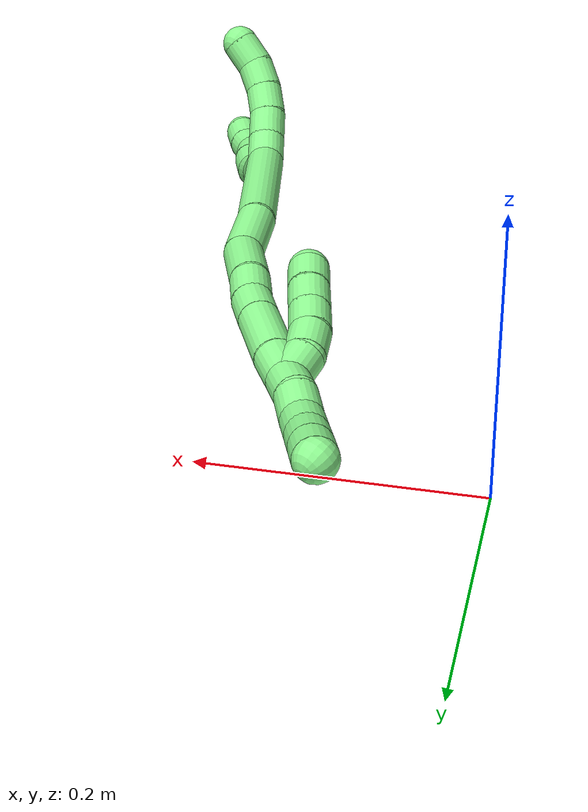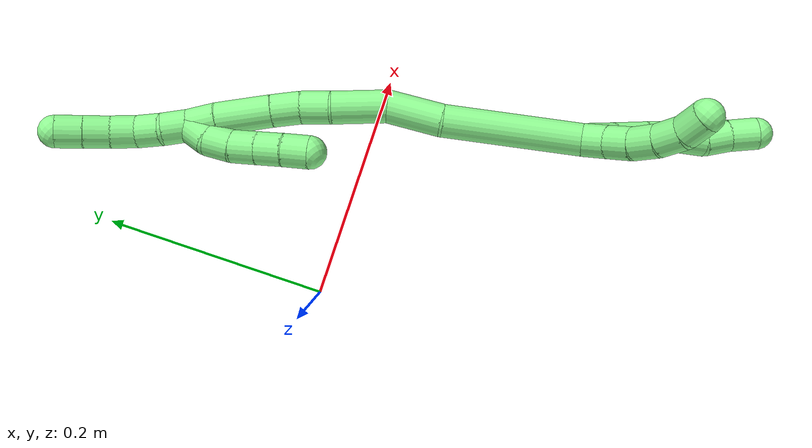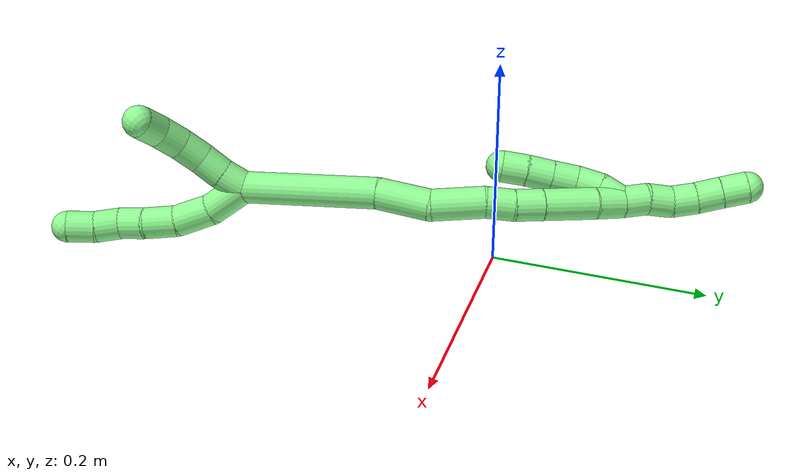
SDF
<sdf version="1.7">
 <world name="default">
  <model name="13">
   <static>0</static>
   <link name="13">
    <collision name="collision-cylinder-e_1_2_8">
     <pose>-0.003781 -0.015305 0.004946 1.25823 -0.230894 -0.168387</pose>
     <geometry><cylinder><radius>0.0125</radius><length>0.033046</length></cylinder></geometry>
     <surface>
      <friction><ode><mu>1.16</mu><mu2>1.16</mu2><slip1>0</slip1><slip2>0</slip2></ode></friction>
      <contact><ode><kp>1e+06</kp><kd>1</kd><max_vel>0</max_vel><min_depth>0.001</min_depth></ode></contact>
     </surface>
    </collision>
    <visual name="visual-cylinder-e_1_2_8">
     <pose>-0.003781 -0.015305 0.004946 1.25823 -0.230894 -0.168387</pose>
     <geometry><cylinder><radius>0.0125</radius><length>0.033046</length></cylinder></geometry>
     <material><ambient>0.564706 0.984314 0.572549 1</ambient></material>
    </visual>
    <collision name="collision-cylinder-e_2_8_9">
     <pose>-0.007668 -0.043795 0.016903 1.08208 -0.007079 -0.004254</pose>
     <geometry><cylinder><radius>0.0125</radius><length>0.029865</length></cylinder></geometry>
     <surface>
      <friction><ode><mu>1.16</mu><mu2>1.16</mu2><slip1>0</slip1><slip2>0</slip2></ode></friction>
      <contact><ode><kp>1e+06</kp><kd>1</kd><max_vel>0</max_vel><min_depth>0.001</min_depth></ode></contact>
     </surface>
    </collision>
    <visual name="visual-cylinder-e_2_8_9">
     <pose>-0.007668 -0.043795 0.016903 1.08208 -0.007079 -0.004254</pose>
     <geometry><cylinder><radius>0.0125</radius><length>0.029865</length></cylinder></geometry>
     <material><ambient>0.564706 0.984314 0.572549 1</ambient></material>
    </visual>
    <collision name="collision-cylinder-e_3_9_10">
     <pose>-0.005354 -0.066745 0.031735 0.895504 0.19102 0.09196</pose>
     <geometry><cylinder><radius>0.0125</radius><length>0.025489</length></cylinder></geometry>
     <surface>
      <friction><ode><mu>1.16</mu><mu2>1.16</mu2><slip1>0</slip1><slip2>0</slip2></ode></friction>
      <contact><ode><kp>1e+06</kp><kd>1</kd><max_vel>0</max_vel><min_depth>0.001</min_depth></ode></contact>
     </surface>
    </collision>
    <visual name="visual-cylinder-e_3_9_10">
     <pose>-0.005354 -0.066745 0.031735 0.895504 0.19102 0.09196</pose>
     <geometry><cylinder><radius>0.0125</radius><length>0.025489</length></cylinder></geometry>
     <material><ambient>0.564706 0.984314 0.572549 1</ambient></material>
    </visual>
    <collision name="collision-cylinder-e_4_10_11">
     <pose>-0.002073 -0.083573 0.046696 0.779947 0.085614 0.035207</pose>
     <geometry><cylinder><radius>0.0125</radius><length>0.020156</length></cylinder></geometry>
     <surface>
      <friction><ode><mu>1.16</mu><mu2>1.16</mu2><slip1>0</slip1><slip2>0</slip2></ode></friction>
      <contact><ode><kp>1e+06</kp><kd>1</kd><max_vel>0</max_vel><min_depth>0.001</min_depth></ode></contact>
     </surface>
    </collision>
    <visual name="visual-cylinder-e_4_10_11">
     <pose>-0.002073 -0.083573 0.046696 0.779947 0.085614 0.035207</pose>
     <geometry><cylinder><radius>0.0125</radius><length>0.020156</length></cylinder></geometry>
     <material><ambient>0.564706 0.984314 0.572549 1</ambient></material>
    </visual>
    <collision name="collision-cylinder-e_5_11_12">
     <pose>0.001692 -0.098848 0.058819 1.02534 0.293472 0.166</pose>
     <geometry><cylinder><radius>0.0125</radius><length>0.020075</length></cylinder></geometry>
     <surface>
      <friction><ode><mu>1.16</mu><mu2>1.16</mu2><slip1>0</slip1><slip2>0</slip2></ode></friction>
      <contact><ode><kp>1e+06</kp><kd>1</kd><max_vel>0</max_vel><min_depth>0.001</min_depth></ode></contact>
     </surface>
    </collision>
    <visual name="visual-cylinder-e_5_11_12">
     <pose>0.001692 -0.098848 0.058819 1.02534 0.293472 0.166</pose>
     <geometry><cylinder><radius>0.0125</radius><length>0.020075</length></cylinder></geometry>
     <material><ambient>0.564706 0.984314 0.572549 1</ambient></material>
    </visual>
    <collision name="collision-cylinder-e_6_12_6">
     <pose>0.008115 -0.114711 0.070382 0.860529 0.335575 0.155159</pose>
     <geometry><cylinder><radius>0.0125</radius><length>0.021369</length></cylinder></geometry>
     <surface>
      <friction><ode><mu>1.16</mu><mu2>1.16</mu2><slip1>0</slip1><slip2>0</slip2></ode></friction>
      <contact><ode><kp>1e+06</kp><kd>1</kd><max_vel>0</max_vel><min_depth>0.001</min_depth></ode></contact>
     </surface>
    </collision>
    <visual name="visual-cylinder-e_6_12_6">
     <pose>0.008115 -0.114711 0.070382 0.860529 0.335575 0.155159</pose>
     <geometry><cylinder><radius>0.0125</radius><length>0.021369</length></cylinder></geometry>
     <material><ambient>0.564706 0.984314 0.572549 1</ambient></material>
    </visual>
    <collision name="collision-cylinder-e_1_2_13">
     <pose>0.005424 -0.002752 0.007938 0.333686 0.57335 0.099211</pose>
     <geometry><cylinder><radius>0.0125</radius><length>0.02</length></cylinder></geometry>
     <surface>
      <friction><ode><mu>1.16</mu><mu2>1.16</mu2><slip1>0</slip1><slip2>0</slip2></ode></friction>
      <contact><ode><kp>1e+06</kp><kd>1</kd><max_vel>0</max_vel><min_depth>0.001</min_depth></ode></contact>
     </surface>
    </collision>
    <visual name="visual-cylinder-e_1_2_13">
     <pose>0.005424 -0.002752 0.007938 0.333686 0.57335 0.099211</pose>
     <geometry><cylinder><radius>0.0125</radius><length>0.02</length></cylinder></geometry>
     <material><ambient>0.564706 0.984314 0.572549 1</ambient></material>
    </visual>
    <collision name="collision-cylinder-e_2_13_14">
     <pose>0.017042 -0.007027 0.023577 0.195355 0.667812 0.067958</pose>
     <geometry><cylinder><radius>0.0125</radius><length>0.02</length></cylinder></geometry>
     <surface>
      <friction><ode><mu>1.16</mu><mu2>1.16</mu2><slip1>0</slip1><slip2>0</slip2></ode></friction>
      <contact><ode><kp>1e+06</kp><kd>1</kd><max_vel>0</max_vel><min_depth>0.001</min_depth></ode></contact>
     </surface>
    </collision>
    <visual name="visual-cylinder-e_2_13_14">
     <pose>0.017042 -0.007027 0.023577 0.195355 0.667812 0.067958</pose>
     <geometry><cylinder><radius>0.0125</radius><length>0.02</length></cylinder></geometry>
     <material><ambient>0.564706 0.984314 0.572549 1</ambient></material>
    </visual>
    <collision name="collision-cylinder-e_3_14_15">
     <pose>0.030611 -0.010592 0.037715 0.307128 0.829626 0.136111</pose>
     <geometry><cylinder><radius>0.0125</radius><length>0.02</length></cylinder></geometry>
     <surface>
      <friction><ode><mu>1.16</mu><mu2>1.16</mu2><slip1>0</slip1><slip2>0</slip2></ode></friction>
      <contact><ode><kp>1e+06</kp><kd>1</kd><max_vel>0</max_vel><min_depth>0.001</min_depth></ode></contact>
     </surface>
    </collision>
    <visual name="visual-cylinder-e_3_14_15">
     <pose>0.030611 -0.010592 0.037715 0.307128 0.829626 0.136111</pose>
     <geometry><cylinder><radius>0.0125</radius><length>0.02</length></cylinder></geometry>
     <material><ambient>0.564706 0.984314 0.572549 1</ambient></material>
    </visual>
    <collision name="collision-cylinder-e_4_15_16">
     <pose>0.046225 -0.015201 0.049207 0.469776 0.967854 0.25025</pose>
     <geometry><cylinder><radius>0.0125</radius><length>0.02</length></cylinder></geometry>
     <surface>
      <friction><ode><mu>1.16</mu><mu2>1.16</mu2><slip1>0</slip1><slip2>0</slip2></ode></friction>
      <contact><ode><kp>1e+06</kp><kd>1</kd><max_vel>0</max_vel><min_depth>0.001</min_depth></ode></contact>
     </surface>
    </collision>
    <visual name="visual-cylinder-e_4_15_16">
     <pose>0.046225 -0.015201 0.049207 0.469776 0.967854 0.25025</pose>
     <geometry><cylinder><radius>0.0125</radius><length>0.02</length></cylinder></geometry>
     <material><ambient>0.564706 0.984314 0.572549 1</ambient></material>
    </visual>
    <collision name="collision-cylinder-e_5_16_5">
     <pose>0.063835 -0.020383 0.056567 0.848846 1.21485 0.608694</pose>
     <geometry><cylinder><radius>0.0125</radius><length>0.02</length></cylinder></geometry>
     <surface>
      <friction><ode><mu>1.16</mu><mu2>1.16</mu2><slip1>0</slip1><slip2>0</slip2></ode></friction>
      <contact><ode><kp>1e+06</kp><kd>1</kd><max_vel>0</max_vel><min_depth>0.001</min_depth></ode></contact>
     </surface>
    </collision>
    <visual name="visual-cylinder-e_5_16_5">
     <pose>0.063835 -0.020383 0.056567 0.848846 1.21485 0.608694</pose>
     <geometry><cylinder><radius>0.0125</radius><length>0.02</length></cylinder></geometry>
     <material><ambient>0.564706 0.984314 0.572549 1</ambient></material>
    </visual>
    <collision name="collision-cylinder-e_1_2_17">
     <pose>-0.006897 0.035658 -0.038739 -2.39759 -0.130251 0.331243</pose>
     <geometry><cylinder><radius>0.0125</radius><length>0.106202</length></cylinder></geometry>
     <surface>
      <friction><ode><mu>1.16</mu><mu2>1.16</mu2><slip1>0</slip1><slip2>0</slip2></ode></friction>
      <contact><ode><kp>1e+06</kp><kd>1</kd><max_vel>0</max_vel><min_depth>0.001</min_depth></ode></contact>
     </surface>
    </collision>
    <visual name="visual-cylinder-e_1_2_17">
     <pose>-0.006897 0.035658 -0.038739 -2.39759 -0.130251 0.331243</pose>
     <geometry><cylinder><radius>0.0125</radius><length>0.106202</length></cylinder></geometry>
     <material><ambient>0.564706 0.984314 0.572549 1</ambient></material>
    </visual>
    <collision name="collision-cylinder-e_2_17_18">
     <pose>-0.016847 0.082451 -0.095184 -2.58019 -0.144935 0.493329</pose>
     <geometry><cylinder><radius>0.0125</radius><length>0.042277</length></cylinder></geometry>
     <surface>
      <friction><ode><mu>1.16</mu><mu2>1.16</mu2><slip1>0</slip1><slip2>0</slip2></ode></friction>
      <contact><ode><kp>1e+06</kp><kd>1</kd><max_vel>0</max_vel><min_depth>0.001</min_depth></ode></contact>
     </surface>
    </collision>
    <visual name="visual-cylinder-e_2_17_18">
     <pose>-0.016847 0.082451 -0.095184 -2.58019 -0.144935 0.493329</pose>
     <geometry><cylinder><radius>0.0125</radius><length>0.042277</length></cylinder></geometry>
     <material><ambient>0.564706 0.984314 0.572549 1</ambient></material>
    </visual>
    <collision name="collision-cylinder-e_3_18_19">
     <pose>-0.024362 0.109696 -0.125967 -2.25262 -0.211825 0.439224</pose>
     <geometry><cylinder><radius>0.0125</radius><length>0.042446</length></cylinder></geometry>
     <surface>
      <friction><ode><mu>1.16</mu><mu2>1.16</mu2><slip1>0</slip1><slip2>0</slip2></ode></friction>
      <contact><ode><kp>1e+06</kp><kd>1</kd><max_vel>0</max_vel><min_depth>0.001</min_depth></ode></contact>
     </surface>
    </collision>
    <visual name="visual-cylinder-e_3_18_19">
     <pose>-0.024362 0.109696 -0.125967 -2.25262 -0.211825 0.439224</pose>
     <geometry><cylinder><radius>0.0125</radius><length>0.042446</length></cylinder></geometry>
     <material><ambient>0.564706 0.984314 0.572549 1</ambient></material>
    </visual>
    <collision name="collision-cylinder-e_4_19_20">
     <pose>-0.032283 0.133033 -0.146834 -2.39379 -0.314723 0.768605</pose>
     <geometry><cylinder><radius>0.0125</radius><length>0.022351</length></cylinder></geometry>
     <surface>
      <friction><ode><mu>1.16</mu><mu2>1.16</mu2><slip1>0</slip1><slip2>0</slip2></ode></friction>
      <contact><ode><kp>1e+06</kp><kd>1</kd><max_vel>0</max_vel><min_depth>0.001</min_depth></ode></contact>
     </surface>
    </collision>
    <visual name="visual-cylinder-e_4_19_20">
     <pose>-0.032283 0.133033 -0.146834 -2.39379 -0.314723 0.768605</pose>
     <geometry><cylinder><radius>0.0125</radius><length>0.022351</length></cylinder></geometry>
     <material><ambient>0.564706 0.984314 0.572549 1</ambient></material>
    </visual>
    <collision name="collision-cylinder-e_5_20_21">
     <pose>-0.039371 0.148524 -0.161097 -2.2351 -0.332791 0.664103</pose>
     <geometry><cylinder><radius>0.0125</radius><length>0.022214</length></cylinder></geometry>
     <surface>
      <friction><ode><mu>1.16</mu><mu2>1.16</mu2><slip1>0</slip1><slip2>0</slip2></ode></friction>
      <contact><ode><kp>1e+06</kp><kd>1</kd><max_vel>0</max_vel><min_depth>0.001</min_depth></ode></contact>
     </surface>
    </collision>
    <visual name="visual-cylinder-e_5_20_21">
     <pose>-0.039371 0.148524 -0.161097 -2.2351 -0.332791 0.664103</pose>
     <geometry><cylinder><radius>0.0125</radius><length>0.022214</length></cylinder></geometry>
     <material><ambient>0.564706 0.984314 0.572549 1</ambient></material>
    </visual>
    <collision name="collision-cylinder-e_6_21_22">
     <pose>-0.050418 0.172508 -0.17956 -2.22246 -0.358987 0.702816</pose>
     <geometry><cylinder><radius>0.0125</radius><length>0.042233</length></cylinder></geometry>
     <surface>
      <friction><ode><mu>1.16</mu><mu2>1.16</mu2><slip1>0</slip1><slip2>0</slip2></ode></friction>
      <contact><ode><kp>1e+06</kp><kd>1</kd><max_vel>0</max_vel><min_depth>0.001</min_depth></ode></contact>
     </surface>
    </collision>
    <visual name="visual-cylinder-e_6_21_22">
     <pose>-0.050418 0.172508 -0.17956 -2.22246 -0.358987 0.702816</pose>
     <geometry><cylinder><radius>0.0125</radius><length>0.042233</length></cylinder></geometry>
     <material><ambient>0.564706 0.984314 0.572549 1</ambient></material>
    </visual>
    <collision name="collision-cylinder-e_7_22_1">
     <pose>-0.062509 0.196583 -0.197244 -2.1689 -0.432837 0.788186</pose>
     <geometry><cylinder><radius>0.0125</radius><length>0.022276</length></cylinder></geometry>
     <surface>
      <friction><ode><mu>1.16</mu><mu2>1.16</mu2><slip1>0</slip1><slip2>0</slip2></ode></friction>
      <contact><ode><kp>1e+06</kp><kd>1</kd><max_vel>0</max_vel><min_depth>0.001</min_depth></ode></contact>
     </surface>
    </collision>
    <visual name="visual-cylinder-e_7_22_1">
     <pose>-0.062509 0.196583 -0.197244 -2.1689 -0.432837 0.788186</pose>
     <geometry><cylinder><radius>0.0125</radius><length>0.022276</length></cylinder></geometry>
     <material><ambient>0.564706 0.984314 0.572549 1</ambient></material>
    </visual>
    <collision name="collision-cylinder-e_1_1_23">
     <pose>-0.066389 0.203174 -0.193126 0.17801 0.079241 0.007075</pose>
     <geometry><cylinder><radius>0.0125</radius><length>0.02</length></cylinder></geometry>
     <surface>
      <friction><ode><mu>1.16</mu><mu2>1.16</mu2><slip1>0</slip1><slip2>0</slip2></ode></friction>
      <contact><ode><kp>1e+06</kp><kd>1</kd><max_vel>0</max_vel><min_depth>0.001</min_depth></ode></contact>
     </surface>
    </collision>
    <visual name="visual-cylinder-e_1_1_23">
     <pose>-0.066389 0.203174 -0.193126 0.17801 0.079241 0.007075</pose>
     <geometry><cylinder><radius>0.0125</radius><length>0.02</length></cylinder></geometry>
     <material><ambient>0.564706 0.984314 0.572549 1</ambient></material>
    </visual>
    <collision name="collision-cylinder-e_2_23_24">
     <pose>-0.063413 0.196763 -0.174733 0.496135 0.220224 0.055991</pose>
     <geometry><cylinder><radius>0.0125</radius><length>0.02</length></cylinder></geometry>
     <surface>
      <friction><ode><mu>1.16</mu><mu2>1.16</mu2><slip1>0</slip1><slip2>0</slip2></ode></friction>
      <contact><ode><kp>1e+06</kp><kd>1</kd><max_vel>0</max_vel><min_depth>0.001</min_depth></ode></contact>
     </surface>
    </collision>
    <visual name="visual-cylinder-e_2_23_24">
     <pose>-0.063413 0.196763 -0.174733 0.496135 0.220224 0.055991</pose>
     <geometry><cylinder><radius>0.0125</radius><length>0.02</length></cylinder></geometry>
     <material><ambient>0.564706 0.984314 0.572549 1</ambient></material>
    </visual>
    <collision name="collision-cylinder-e_3_24_25">
     <pose>-0.057988 0.186413 -0.158605 0.647327 0.330029 0.111612</pose>
     <geometry><cylinder><radius>0.0125</radius><length>0.02</length></cylinder></geometry>
     <surface>
      <friction><ode><mu>1.16</mu><mu2>1.16</mu2><slip1>0</slip1><slip2>0</slip2></ode></friction>
      <contact><ode><kp>1e+06</kp><kd>1</kd><max_vel>0</max_vel><min_depth>0.001</min_depth></ode></contact>
     </surface>
    </collision>
    <visual name="visual-cylinder-e_3_24_25">
     <pose>-0.057988 0.186413 -0.158605 0.647327 0.330029 0.111612</pose>
     <geometry><cylinder><radius>0.0125</radius><length>0.02</length></cylinder></geometry>
     <material><ambient>0.564706 0.984314 0.572549 1</ambient></material>
    </visual>
    <collision name="collision-cylinder-e_4_25_26">
     <pose>-0.051289 0.175151 -0.143498 0.633798 0.353161 0.116905</pose>
     <geometry><cylinder><radius>0.0125</radius><length>0.02</length></cylinder></geometry>
     <surface>
      <friction><ode><mu>1.16</mu><mu2>1.16</mu2><slip1>0</slip1><slip2>0</slip2></ode></friction>
      <contact><ode><kp>1e+06</kp><kd>1</kd><max_vel>0</max_vel><min_depth>0.001</min_depth></ode></contact>
     </surface>
    </collision>
    <visual name="visual-cylinder-e_4_25_26">
     <pose>-0.051289 0.175151 -0.143498 0.633798 0.353161 0.116905</pose>
     <geometry><cylinder><radius>0.0125</radius><length>0.02</length></cylinder></geometry>
     <material><ambient>0.564706 0.984314 0.572549 1</ambient></material>
    </visual>
    <collision name="collision-cylinder-e_5_26_4">
     <pose>-0.045057 0.163624 -0.128409 0.670474 0.280978 0.098458</pose>
     <geometry><cylinder><radius>0.0125</radius><length>0.02</length></cylinder></geometry>
     <surface>
      <friction><ode><mu>1.16</mu><mu2>1.16</mu2><slip1>0</slip1><slip2>0</slip2></ode></friction>
      <contact><ode><kp>1e+06</kp><kd>1</kd><max_vel>0</max_vel><min_depth>0.001</min_depth></ode></contact>
     </surface>
    </collision>
    <visual name="visual-cylinder-e_5_26_4">
     <pose>-0.045057 0.163624 -0.128409 0.670474 0.280978 0.098458</pose>
     <geometry><cylinder><radius>0.0125</radius><length>0.02</length></cylinder></geometry>
     <material><ambient>0.564706 0.984314 0.572549 1</ambient></material>
    </visual>
    <collision name="collision-cylinder-e_1_1_27">
     <pose>-0.069897 0.213001 -0.208193 -2.14851 -0.275035 0.500146</pose>
     <geometry><cylinder><radius>0.0125</radius><length>0.02</length></cylinder></geometry>
     <surface>
      <friction><ode><mu>1.16</mu><mu2>1.16</mu2><slip1>0</slip1><slip2>0</slip2></ode></friction>
      <contact><ode><kp>1e+06</kp><kd>1</kd><max_vel>0</max_vel><min_depth>0.001</min_depth></ode></contact>
     </surface>
    </collision>
    <visual name="visual-cylinder-e_1_1_27">
     <pose>-0.069897 0.213001 -0.208193 -2.14851 -0.275035 0.500146</pose>
     <geometry><cylinder><radius>0.0125</radius><length>0.02</length></cylinder></geometry>
     <material><ambient>0.564706 0.984314 0.572549 1</ambient></material>
    </visual>
    <collision name="collision-cylinder-e_2_27_28">
     <pose>-0.076665 0.227543 -0.219899 -2.35388 -0.417234 0.9423</pose>
     <geometry><cylinder><radius>0.0125</radius><length>0.02</length></cylinder></geometry>
     <surface>
      <friction><ode><mu>1.16</mu><mu2>1.16</mu2><slip1>0</slip1><slip2>0</slip2></ode></friction>
      <contact><ode><kp>1e+06</kp><kd>1</kd><max_vel>0</max_vel><min_depth>0.001</min_depth></ode></contact>
     </surface>
    </collision>
    <visual name="visual-cylinder-e_2_27_28">
     <pose>-0.076665 0.227543 -0.219899 -2.35388 -0.417234 0.9423</pose>
     <geometry><cylinder><radius>0.0125</radius><length>0.02</length></cylinder></geometry>
     <material><ambient>0.564706 0.984314 0.572549 1</ambient></material>
    </visual>
    <collision name="collision-cylinder-e_3_28_29">
     <pose>-0.082035 0.242104 -0.232089 -2.18844 -0.132184 0.25502</pose>
     <geometry><cylinder><radius>0.0125</radius><length>0.02</length></cylinder></geometry>
     <surface>
      <friction><ode><mu>1.16</mu><mu2>1.16</mu2><slip1>0</slip1><slip2>0</slip2></ode></friction>
      <contact><ode><kp>1e+06</kp><kd>1</kd><max_vel>0</max_vel><min_depth>0.001</min_depth></ode></contact>
     </surface>
    </collision>
    <visual name="visual-cylinder-e_3_28_29">
     <pose>-0.082035 0.242104 -0.232089 -2.18844 -0.132184 0.25502</pose>
     <geometry><cylinder><radius>0.0125</radius><length>0.02</length></cylinder></geometry>
     <material><ambient>0.564706 0.984314 0.572549 1</ambient></material>
    </visual>
    <collision name="collision-cylinder-e_4_29_30">
     <pose>-0.083656 0.258551 -0.243299 -2.14982 -0.030271 0.055947</pose>
     <geometry><cylinder><radius>0.0125</radius><length>0.02</length></cylinder></geometry>
     <surface>
      <friction><ode><mu>1.16</mu><mu2>1.16</mu2><slip1>0</slip1><slip2>0</slip2></ode></friction>
      <contact><ode><kp>1e+06</kp><kd>1</kd><max_vel>0</max_vel><min_depth>0.001</min_depth></ode></contact>
     </surface>
    </collision>
    <visual name="visual-cylinder-e_4_29_30">
     <pose>-0.083656 0.258551 -0.243299 -2.14982 -0.030271 0.055947</pose>
     <geometry><cylinder><radius>0.0125</radius><length>0.02</length></cylinder></geometry>
     <material><ambient>0.564706 0.984314 0.572549 1</ambient></material>
    </visual>
    <collision name="collision-cylinder-e_5_30_3">
     <pose>-0.084394 0.275212 -0.254337 -2.16206 -0.043529 0.081621</pose>
     <geometry><cylinder><radius>0.0125</radius><length>0.02</length></cylinder></geometry>
     <surface>
      <friction><ode><mu>1.16</mu><mu2>1.16</mu2><slip1>0</slip1><slip2>0</slip2></ode></friction>
      <contact><ode><kp>1e+06</kp><kd>1</kd><max_vel>0</max_vel><min_depth>0.001</min_depth></ode></contact>
     </surface>
    </collision>
    <visual name="visual-cylinder-e_5_30_3">
     <pose>-0.084394 0.275212 -0.254337 -2.16206 -0.043529 0.081621</pose>
     <geometry><cylinder><radius>0.0125</radius><length>0.02</length></cylinder></geometry>
     <material><ambient>0.564706 0.984314 0.572549 1</ambient></material>
    </visual>
    <collision name="collision-sphere-3">
     <pose>-0.084829 0.283506 -0.259906 0 -0 0</pose>
     <geometry><sphere><radius>0.0125</radius></sphere></geometry>
     <surface>
      <friction><ode><mu>1.16</mu><mu2>1.16</mu2><slip1>0</slip1><slip2>0</slip2></ode></friction>
      <contact><ode><kp>1e+06</kp><kd>1</kd><max_vel>0</max_vel><min_depth>0.001</min_depth></ode></contact>
     </surface>
    </collision>
    <visual name="visual-sphere-3">
     <pose>-0.084829 0.283506 -0.259906 0 -0 0</pose>
     <geometry><sphere><radius>0.0125</radius></sphere></geometry>
     <material><ambient>0.564706 0.984314 0.572549 1</ambient></material>
    </visual>
    <collision name="collision-sphere-30">
     <pose>-0.083959 0.266917 -0.248768 0 -0 0</pose>
     <geometry><sphere><radius>0.0125</radius></sphere></geometry>
     <surface>
      <friction><ode><mu>1.16</mu><mu2>1.16</mu2><slip1>0</slip1><slip2>0</slip2></ode></friction>
      <contact><ode><kp>1e+06</kp><kd>1</kd><max_vel>0</max_vel><min_depth>0.001</min_depth></ode></contact>
     </surface>
    </collision>
    <visual name="visual-sphere-30">
     <pose>-0.083959 0.266917 -0.248768 0 -0 0</pose>
     <geometry><sphere><radius>0.0125</radius></sphere></geometry>
     <material><ambient>0.564706 0.984314 0.572549 1</ambient></material>
    </visual>
    <collision name="collision-sphere-29">
     <pose>-0.083353 0.250185 -0.237829 0 -0 0</pose>
     <geometry><sphere><radius>0.0125</radius></sphere></geometry>
     <surface>
      <friction><ode><mu>1.16</mu><mu2>1.16</mu2><slip1>0</slip1><slip2>0</slip2></ode></friction>
      <contact><ode><kp>1e+06</kp><kd>1</kd><max_vel>0</max_vel><min_depth>0.001</min_depth></ode></contact>
     </surface>
    </collision>
    <visual name="visual-sphere-29">
     <pose>-0.083353 0.250185 -0.237829 0 -0 0</pose>
     <geometry><sphere><radius>0.0125</radius></sphere></geometry>
     <material><ambient>0.564706 0.984314 0.572549 1</ambient></material>
    </visual>
    <collision name="collision-sphere-28">
     <pose>-0.080717 0.234022 -0.226348 0 -0 0</pose>
     <geometry><sphere><radius>0.0125</radius></sphere></geometry>
     <surface>
      <friction><ode><mu>1.16</mu><mu2>1.16</mu2><slip1>0</slip1><slip2>0</slip2></ode></friction>
      <contact><ode><kp>1e+06</kp><kd>1</kd><max_vel>0</max_vel><min_depth>0.001</min_depth></ode></contact>
     </surface>
    </collision>
    <visual name="visual-sphere-28">
     <pose>-0.080717 0.234022 -0.226348 0 -0 0</pose>
     <geometry><sphere><radius>0.0125</radius></sphere></geometry>
     <material><ambient>0.564706 0.984314 0.572549 1</ambient></material>
    </visual>
    <collision name="collision-sphere-27">
     <pose>-0.072613 0.221063 -0.213449 0 -0 0</pose>
     <geometry><sphere><radius>0.0125</radius></sphere></geometry>
     <surface>
      <friction><ode><mu>1.16</mu><mu2>1.16</mu2><slip1>0</slip1><slip2>0</slip2></ode></friction>
      <contact><ode><kp>1e+06</kp><kd>1</kd><max_vel>0</max_vel><min_depth>0.001</min_depth></ode></contact>
     </surface>
    </collision>
    <visual name="visual-sphere-27">
     <pose>-0.072613 0.221063 -0.213449 0 -0 0</pose>
     <geometry><sphere><radius>0.0125</radius></sphere></geometry>
     <material><ambient>0.564706 0.984314 0.572549 1</ambient></material>
    </visual>
    <collision name="collision-sphere-4">
     <pose>-0.042284 0.157655 -0.120881 0 -0 0</pose>
     <geometry><sphere><radius>0.0125</radius></sphere></geometry>
     <surface>
      <friction><ode><mu>1.16</mu><mu2>1.16</mu2><slip1>0</slip1><slip2>0</slip2></ode></friction>
      <contact><ode><kp>1e+06</kp><kd>1</kd><max_vel>0</max_vel><min_depth>0.001</min_depth></ode></contact>
     </surface>
    </collision>
    <visual name="visual-sphere-4">
     <pose>-0.042284 0.157655 -0.120881 0 -0 0</pose>
     <geometry><sphere><radius>0.0125</radius></sphere></geometry>
     <material><ambient>0.564706 0.984314 0.572549 1</ambient></material>
    </visual>
    <collision name="collision-sphere-26">
     <pose>-0.04783 0.169594 -0.135937 0 -0 0</pose>
     <geometry><sphere><radius>0.0125</radius></sphere></geometry>
     <surface>
      <friction><ode><mu>1.16</mu><mu2>1.16</mu2><slip1>0</slip1><slip2>0</slip2></ode></friction>
      <contact><ode><kp>1e+06</kp><kd>1</kd><max_vel>0</max_vel><min_depth>0.001</min_depth></ode></contact>
     </surface>
    </collision>
    <visual name="visual-sphere-26">
     <pose>-0.04783 0.169594 -0.135937 0 -0 0</pose>
     <geometry><sphere><radius>0.0125</radius></sphere></geometry>
     <material><ambient>0.564706 0.984314 0.572549 1</ambient></material>
    </visual>
    <collision name="collision-sphere-25">
     <pose>-0.054747 0.180708 -0.151058 0 -0 0</pose>
     <geometry><sphere><radius>0.0125</radius></sphere></geometry>
     <surface>
      <friction><ode><mu>1.16</mu><mu2>1.16</mu2><slip1>0</slip1><slip2>0</slip2></ode></friction>
      <contact><ode><kp>1e+06</kp><kd>1</kd><max_vel>0</max_vel><min_depth>0.001</min_depth></ode></contact>
     </surface>
    </collision>
    <visual name="visual-sphere-25">
     <pose>-0.054747 0.180708 -0.151058 0 -0 0</pose>
     <geometry><sphere><radius>0.0125</radius></sphere></geometry>
     <material><ambient>0.564706 0.984314 0.572549 1</ambient></material>
    </visual>
    <collision name="collision-sphere-24">
     <pose>-0.061229 0.192118 -0.166151 0 -0 0</pose>
     <geometry><sphere><radius>0.0125</radius></sphere></geometry>
     <surface>
      <friction><ode><mu>1.16</mu><mu2>1.16</mu2><slip1>0</slip1><slip2>0</slip2></ode></friction>
      <contact><ode><kp>1e+06</kp><kd>1</kd><max_vel>0</max_vel><min_depth>0.001</min_depth></ode></contact>
     </surface>
    </collision>
    <visual name="visual-sphere-24">
     <pose>-0.061229 0.192118 -0.166151 0 -0 0</pose>
     <geometry><sphere><radius>0.0125</radius></sphere></geometry>
     <material><ambient>0.564706 0.984314 0.572549 1</ambient></material>
    </visual>
    <collision name="collision-sphere-23">
     <pose>-0.065598 0.201408 -0.183315 0 -0 0</pose>
     <geometry><sphere><radius>0.0125</radius></sphere></geometry>
     <surface>
      <friction><ode><mu>1.16</mu><mu2>1.16</mu2><slip1>0</slip1><slip2>0</slip2></ode></friction>
      <contact><ode><kp>1e+06</kp><kd>1</kd><max_vel>0</max_vel><min_depth>0.001</min_depth></ode></contact>
     </surface>
    </collision>
    <visual name="visual-sphere-23">
     <pose>-0.065598 0.201408 -0.183315 0 -0 0</pose>
     <geometry><sphere><radius>0.0125</radius></sphere></geometry>
     <material><ambient>0.564706 0.984314 0.572549 1</ambient></material>
    </visual>
    <collision name="collision-sphere-1">
     <pose>-0.067181 0.204939 -0.202937 0 -0 0</pose>
     <geometry><sphere><radius>0.0125</radius></sphere></geometry>
     <surface>
      <friction><ode><mu>1.16</mu><mu2>1.16</mu2><slip1>0</slip1><slip2>0</slip2></ode></friction>
      <contact><ode><kp>1e+06</kp><kd>1</kd><max_vel>0</max_vel><min_depth>0.001</min_depth></ode></contact>
     </surface>
    </collision>
    <visual name="visual-sphere-1">
     <pose>-0.067181 0.204939 -0.202937 0 -0 0</pose>
     <geometry><sphere><radius>0.0125</radius></sphere></geometry>
     <material><ambient>0.564706 0.984314 0.572549 1</ambient></material>
    </visual>
    <collision name="collision-sphere-22">
     <pose>-0.057837 0.188227 -0.191551 0 -0 0</pose>
     <geometry><sphere><radius>0.0125</radius></sphere></geometry>
     <surface>
      <friction><ode><mu>1.16</mu><mu2>1.16</mu2><slip1>0</slip1><slip2>0</slip2></ode></friction>
      <contact><ode><kp>1e+06</kp><kd>1</kd><max_vel>0</max_vel><min_depth>0.001</min_depth></ode></contact>
     </surface>
    </collision>
    <visual name="visual-sphere-22">
     <pose>-0.057837 0.188227 -0.191551 0 -0 0</pose>
     <geometry><sphere><radius>0.0125</radius></sphere></geometry>
     <material><ambient>0.564706 0.984314 0.572549 1</ambient></material>
    </visual>
    <collision name="collision-sphere-21">
     <pose>-0.043 0.156789 -0.167569 0 -0 0</pose>
     <geometry><sphere><radius>0.0125</radius></sphere></geometry>
     <surface>
      <friction><ode><mu>1.16</mu><mu2>1.16</mu2><slip1>0</slip1><slip2>0</slip2></ode></friction>
      <contact><ode><kp>1e+06</kp><kd>1</kd><max_vel>0</max_vel><min_depth>0.001</min_depth></ode></contact>
     </surface>
    </collision>
    <visual name="visual-sphere-21">
     <pose>-0.043 0.156789 -0.167569 0 -0 0</pose>
     <geometry><sphere><radius>0.0125</radius></sphere></geometry>
     <material><ambient>0.564706 0.984314 0.572549 1</ambient></material>
    </visual>
    <collision name="collision-sphere-12">
     <pose>0.004596 -0.107062 0.063804 0 -0 0</pose>
     <geometry><sphere><radius>0.0125</radius></sphere></geometry>
     <surface>
      <friction><ode><mu>1.16</mu><mu2>1.16</mu2><slip1>0</slip1><slip2>0</slip2></ode></friction>
      <contact><ode><kp>1e+06</kp><kd>1</kd><max_vel>0</max_vel><min_depth>0.001</min_depth></ode></contact>
     </surface>
    </collision>
    <visual name="visual-sphere-12">
     <pose>0.004596 -0.107062 0.063804 0 -0 0</pose>
     <geometry><sphere><radius>0.0125</radius></sphere></geometry>
     <material><ambient>0.564706 0.984314 0.572549 1</ambient></material>
    </visual>
    <collision name="collision-sphere-11">
     <pose>-0.001211 -0.090634 0.053835 0 -0 0</pose>
     <geometry><sphere><radius>0.0125</radius></sphere></geometry>
     <surface>
      <friction><ode><mu>1.16</mu><mu2>1.16</mu2><slip1>0</slip1><slip2>0</slip2></ode></friction>
      <contact><ode><kp>1e+06</kp><kd>1</kd><max_vel>0</max_vel><min_depth>0.001</min_depth></ode></contact>
     </surface>
    </collision>
    <visual name="visual-sphere-11">
     <pose>-0.001211 -0.090634 0.053835 0 -0 0</pose>
     <geometry><sphere><radius>0.0125</radius></sphere></geometry>
     <material><ambient>0.564706 0.984314 0.572549 1</ambient></material>
    </visual>
    <collision name="collision-sphere-10">
     <pose>-0.002935 -0.076512 0.039557 0 -0 0</pose>
     <geometry><sphere><radius>0.0125</radius></sphere></geometry>
     <surface>
      <friction><ode><mu>1.16</mu><mu2>1.16</mu2><slip1>0</slip1><slip2>0</slip2></ode></friction>
      <contact><ode><kp>1e+06</kp><kd>1</kd><max_vel>0</max_vel><min_depth>0.001</min_depth></ode></contact>
     </surface>
    </collision>
    <visual name="visual-sphere-10">
     <pose>-0.002935 -0.076512 0.039557 0 -0 0</pose>
     <geometry><sphere><radius>0.0125</radius></sphere></geometry>
     <material><ambient>0.564706 0.984314 0.572549 1</ambient></material>
    </visual>
    <collision name="collision-sphere-9">
     <pose>-0.007774 -0.056979 0.023913 0 -0 0</pose>
     <geometry><sphere><radius>0.0125</radius></sphere></geometry>
     <surface>
      <friction><ode><mu>1.16</mu><mu2>1.16</mu2><slip1>0</slip1><slip2>0</slip2></ode></friction>
      <contact><ode><kp>1e+06</kp><kd>1</kd><max_vel>0</max_vel><min_depth>0.001</min_depth></ode></contact>
     </surface>
    </collision>
    <visual name="visual-sphere-9">
     <pose>-0.007774 -0.056979 0.023913 0 -0 0</pose>
     <geometry><sphere><radius>0.0125</radius></sphere></geometry>
     <material><ambient>0.564706 0.984314 0.572549 1</ambient></material>
    </visual>
    <collision name="collision-sphere-2">
     <geometry><sphere><radius>0.0125</radius></sphere></geometry>
     <surface>
      <friction><ode><mu>1.16</mu><mu2>1.16</mu2><slip1>0</slip1><slip2>0</slip2></ode></friction>
      <contact><ode><kp>1e+06</kp><kd>1</kd><max_vel>0</max_vel><min_depth>0.001</min_depth></ode></contact>
     </surface>
    </collision>
    <visual name="visual-sphere-2">
     <geometry><sphere><radius>0.0125</radius></sphere></geometry>
     <material><ambient>0.564706 0.984314 0.572549 1</ambient></material>
    </visual>
    <collision name="collision-sphere-19">
     <pose>-0.028824 0.125806 -0.139043 0 -0 0</pose>
     <geometry><sphere><radius>0.0125</radius></sphere></geometry>
     <surface>
      <friction><ode><mu>1.16</mu><mu2>1.16</mu2><slip1>0</slip1><slip2>0</slip2></ode></friction>
      <contact><ode><kp>1e+06</kp><kd>1</kd><max_vel>0</max_vel><min_depth>0.001</min_depth></ode></contact>
     </surface>
    </collision>
    <visual name="visual-sphere-19">
     <pose>-0.028824 0.125806 -0.139043 0 -0 0</pose>
     <geometry><sphere><radius>0.0125</radius></sphere></geometry>
     <material><ambient>0.564706 0.984314 0.572549 1</ambient></material>
    </visual>
    <collision name="collision-sphere-8">
     <pose>-0.007563 -0.030611 0.009892 0 -0 0</pose>
     <geometry><sphere><radius>0.0125</radius></sphere></geometry>
     <surface>
      <friction><ode><mu>1.16</mu><mu2>1.16</mu2><slip1>0</slip1><slip2>0</slip2></ode></friction>
      <contact><ode><kp>1e+06</kp><kd>1</kd><max_vel>0</max_vel><min_depth>0.001</min_depth></ode></contact>
     </surface>
    </collision>
    <visual name="visual-sphere-8">
     <pose>-0.007563 -0.030611 0.009892 0 -0 0</pose>
     <geometry><sphere><radius>0.0125</radius></sphere></geometry>
     <material><ambient>0.564706 0.984314 0.572549 1</ambient></material>
    </visual>
    <collision name="collision-sphere-6">
     <pose>0.011633 -0.12236 0.07696 0 -0 0</pose>
     <geometry><sphere><radius>0.0125</radius></sphere></geometry>
     <surface>
      <friction><ode><mu>1.16</mu><mu2>1.16</mu2><slip1>0</slip1><slip2>0</slip2></ode></friction>
      <contact><ode><kp>1e+06</kp><kd>1</kd><max_vel>0</max_vel><min_depth>0.001</min_depth></ode></contact>
     </surface>
    </collision>
    <visual name="visual-sphere-6">
     <pose>0.011633 -0.12236 0.07696 0 -0 0</pose>
     <geometry><sphere><radius>0.0125</radius></sphere></geometry>
     <material><ambient>0.564706 0.984314 0.572549 1</ambient></material>
    </visual>
    <collision name="collision-sphere-13">
     <pose>0.010849 -0.005503 0.015875 0 -0 0</pose>
     <geometry><sphere><radius>0.0125</radius></sphere></geometry>
     <surface>
      <friction><ode><mu>1.16</mu><mu2>1.16</mu2><slip1>0</slip1><slip2>0</slip2></ode></friction>
      <contact><ode><kp>1e+06</kp><kd>1</kd><max_vel>0</max_vel><min_depth>0.001</min_depth></ode></contact>
     </surface>
    </collision>
    <visual name="visual-sphere-13">
     <pose>0.010849 -0.005503 0.015875 0 -0 0</pose>
     <geometry><sphere><radius>0.0125</radius></sphere></geometry>
     <material><ambient>0.564706 0.984314 0.572549 1</ambient></material>
    </visual>
    <collision name="collision-sphere-14">
     <pose>0.023234 -0.008551 0.03128 0 -0 0</pose>
     <geometry><sphere><radius>0.0125</radius></sphere></geometry>
     <surface>
      <friction><ode><mu>1.16</mu><mu2>1.16</mu2><slip1>0</slip1><slip2>0</slip2></ode></friction>
      <contact><ode><kp>1e+06</kp><kd>1</kd><max_vel>0</max_vel><min_depth>0.001</min_depth></ode></contact>
     </surface>
    </collision>
    <visual name="visual-sphere-14">
     <pose>0.023234 -0.008551 0.03128 0 -0 0</pose>
     <geometry><sphere><radius>0.0125</radius></sphere></geometry>
     <material><ambient>0.564706 0.984314 0.572549 1</ambient></material>
    </visual>
    <collision name="collision-sphere-15">
     <pose>0.037988 -0.012634 0.044151 0 -0 0</pose>
     <geometry><sphere><radius>0.0125</radius></sphere></geometry>
     <surface>
      <friction><ode><mu>1.16</mu><mu2>1.16</mu2><slip1>0</slip1><slip2>0</slip2></ode></friction>
      <contact><ode><kp>1e+06</kp><kd>1</kd><max_vel>0</max_vel><min_depth>0.001</min_depth></ode></contact>
     </surface>
    </collision>
    <visual name="visual-sphere-15">
     <pose>0.037988 -0.012634 0.044151 0 -0 0</pose>
     <geometry><sphere><radius>0.0125</radius></sphere></geometry>
     <material><ambient>0.564706 0.984314 0.572549 1</ambient></material>
    </visual>
    <collision name="collision-sphere-16">
     <pose>0.054461 -0.017768 0.054264 0 -0 0</pose>
     <geometry><sphere><radius>0.0125</radius></sphere></geometry>
     <surface>
      <friction><ode><mu>1.16</mu><mu2>1.16</mu2><slip1>0</slip1><slip2>0</slip2></ode></friction>
      <contact><ode><kp>1e+06</kp><kd>1</kd><max_vel>0</max_vel><min_depth>0.001</min_depth></ode></contact>
     </surface>
    </collision>
    <visual name="visual-sphere-16">
     <pose>0.054461 -0.017768 0.054264 0 -0 0</pose>
     <geometry><sphere><radius>0.0125</radius></sphere></geometry>
     <material><ambient>0.564706 0.984314 0.572549 1</ambient></material>
    </visual>
    <collision name="collision-sphere-5">
     <pose>0.073208 -0.022998 0.05887 0 -0 0</pose>
     <geometry><sphere><radius>0.0125</radius></sphere></geometry>
     <surface>
      <friction><ode><mu>1.16</mu><mu2>1.16</mu2><slip1>0</slip1><slip2>0</slip2></ode></friction>
      <contact><ode><kp>1e+06</kp><kd>1</kd><max_vel>0</max_vel><min_depth>0.001</min_depth></ode></contact>
     </surface>
    </collision>
    <visual name="visual-sphere-5">
     <pose>0.073208 -0.022998 0.05887 0 -0 0</pose>
     <geometry><sphere><radius>0.0125</radius></sphere></geometry>
     <material><ambient>0.564706 0.984314 0.572549 1</ambient></material>
    </visual>
    <collision name="collision-sphere-17">
     <pose>-0.013794 0.071315 -0.077478 0 -0 0</pose>
     <geometry><sphere><radius>0.0125</radius></sphere></geometry>
     <surface>
      <friction><ode><mu>1.16</mu><mu2>1.16</mu2><slip1>0</slip1><slip2>0</slip2></ode></friction>
      <contact><ode><kp>1e+06</kp><kd>1</kd><max_vel>0</max_vel><min_depth>0.001</min_depth></ode></contact>
     </surface>
    </collision>
    <visual name="visual-sphere-17">
     <pose>-0.013794 0.071315 -0.077478 0 -0 0</pose>
     <geometry><sphere><radius>0.0125</radius></sphere></geometry>
     <material><ambient>0.564706 0.984314 0.572549 1</ambient></material>
    </visual>
    <collision name="collision-sphere-18">
     <pose>-0.0199 0.093586 -0.112891 0 -0 0</pose>
     <geometry><sphere><radius>0.0125</radius></sphere></geometry>
     <surface>
      <friction><ode><mu>1.16</mu><mu2>1.16</mu2><slip1>0</slip1><slip2>0</slip2></ode></friction>
      <contact><ode><kp>1e+06</kp><kd>1</kd><max_vel>0</max_vel><min_depth>0.001</min_depth></ode></contact>
     </surface>
    </collision>
    <visual name="visual-sphere-18">
     <pose>-0.0199 0.093586 -0.112891 0 -0 0</pose>
     <geometry><sphere><radius>0.0125</radius></sphere></geometry>
     <material><ambient>0.564706 0.984314 0.572549 1</ambient></material>
    </visual>
    <collision name="collision-sphere-20">
     <pose>-0.035743 0.140259 -0.154626 0 -0 0</pose>
     <geometry><sphere><radius>0.0125</radius></sphere></geometry>
     <surface>
      <friction><ode><mu>1.16</mu><mu2>1.16</mu2><slip1>0</slip1><slip2>0</slip2></ode></friction>
      <contact><ode><kp>1e+06</kp><kd>1</kd><max_vel>0</max_vel><min_depth>0.001</min_depth></ode></contact>
     </surface>
    </collision>
    <visual name="visual-sphere-20">
     <pose>-0.035743 0.140259 -0.154626 0 -0 0</pose>
     <geometry><sphere><radius>0.0125</radius></sphere></geometry>
     <material><ambient>0.564706 0.984314 0.572549 1</ambient></material>
    </visual>
    <inertial>
     <pose>-0.024366 0.08259 -0.083791 0 -0 0</pose>
     <mass>0.75</mass>
     <inertia><ixx>0.000207</ixx><ixy>0</ixy><ixz>0</ixz><iyy>-6e-06</iyy><iyz>0</iyz><izz>-6.7e-05</izz></inertia>
    </inertial>
   </link>
   <pose>0.187224 -0.156781 0.154741 1.03058 -0.900675 -0.050779</pose>
  </model>
 </world>
</sdf>
